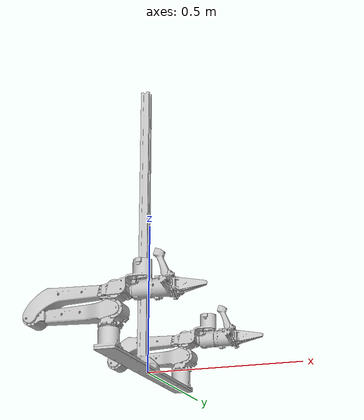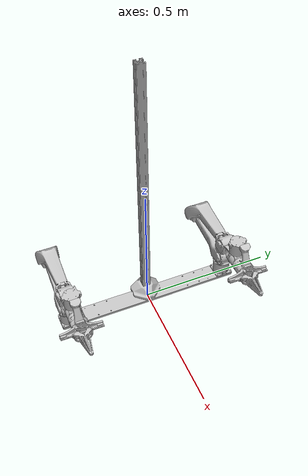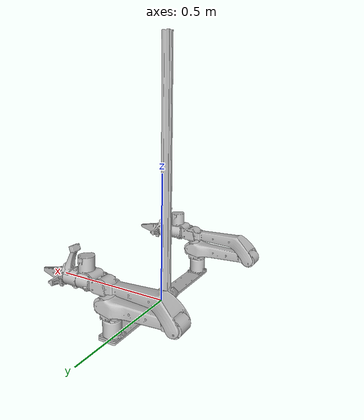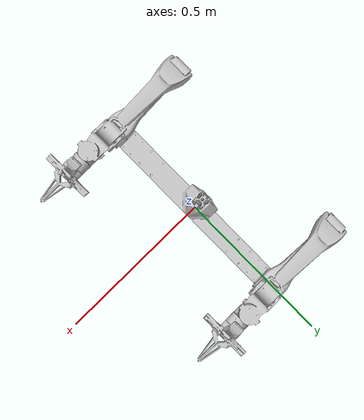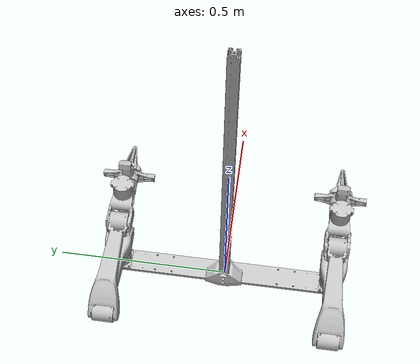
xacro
<?xml version="1.0" encoding="utf-8"?>
<robot xmlns:xacro="http://www.ros.org/wiki/xacro" name="stationlite">

    <xacro:arg name="use_ros2_control" default="false" />
    <xacro:arg name="use_world" default="true" />
    <xacro:arg name="use_gazebo" default="false" />
    <xacro:arg name="headless" default="true" />

    <xacro:include filename="$(find unistackbot_description)/arms/stationlite/urdf/stationlite_macro.xacro"/>
    <xacro:include filename="$(find unistackbot_description)/arms/stationlite/urdf/stationlite_ros2_control.xacro"/>

    <xacro:if value="$(arg use_world)">
        <link name="world"/>
        <joint name="stationlite_world" type="fixed">
            <parent link="world"/>
            <child link="base"/>
            <origin xyz="0 0 0" rpy="0 0 0"/>
        </joint>
    </xacro:if>

    <xacro:stationlite_dual_arm/>

    <xacro:if value="$(arg use_ros2_control)">
        <xacro:stationlite_ros2_control use_gazebo="$(arg use_gazebo)" headless="$(arg headless)"/>
    </xacro:if>

</robot>

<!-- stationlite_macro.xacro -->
<robot xmlns:xacro="http://www.ros.org/wiki/xacro">

  <material name="station_gray">
    <color rgba="0.75294 0.75294 0.75294 1"/>
  </material>

  <!-- stationlite 双臂 macro: base + 左右对称 6-DOF + 平移夹爪 -->
  <!-- 资产来源: Lumos Station Lite 原始 URDF (arms/stationlite/original/) -->

  <xacro:macro name="stationlite_dual_arm">
    <link name="base">
      <inertial>
        <origin xyz="-0.008088 -0.000003 0.217476" rpy="0 0 0"/>
        <mass value="2.239"/>
        <inertia ixx="0.265323119" ixy="-0.000000063" ixz="0.004959622" iyy="0.217350657" iyz="-0.000001195" izz="0.049509934"/>
      </inertial>
      <visual>
        <origin xyz="0 0 0" rpy="0 0 0"/>
        <geometry><mesh filename="package://unistackbot_description/arms/stationlite/meshes/visual/base.STL"/></geometry>
        <material name="station_gray"/>
      </visual>
    </link>

    <link name="left_armbase">
      <inertial>
        <origin xyz="-0.000021 -0.000047 0.037955" rpy="0 0 0"/>
        <mass value="0.510232"/>
        <inertia ixx="0.000284" ixy="0" ixz="0" iyy="0.000280" iyz="-0.000001" izz="0.000280"/>
      </inertial>
      <visual>
        <origin xyz="0 0 0" rpy="0 0 0"/>
        <geometry><mesh filename="package://unistackbot_description/arms/stationlite/meshes/visual/armbase.STL"/></geometry>
        <material name="station_gray"/>
      </visual>
    </link>

    <link name="left_link1">
      <inertial>
        <origin xyz="0.02 -0.002 0.109" rpy="0 0 0"/>
        <mass value="0.496"/>
        <inertia ixx="0.000349" ixy="0" ixz="0" iyy="0.000356" iyz="0" izz="0.000267"/>
      </inertial>
      <visual>
        <origin xyz="0 0 0" rpy="0 0 0"/>
        <geometry><mesh filename="package://unistackbot_description/arms/stationlite/meshes/visual/link1.STL"/></geometry>
        <material name="station_gray"/>
      </visual>
    </link>

    <link name="left_link2">
      <inertial>
        <origin xyz="-0.19164 -0.001145 -5.7E-05" rpy="0 0 0"/>
        <mass value="0.774"/>
        <inertia ixx="0.00037" ixy="0" ixz="0" iyy="0.006613" iyz="0" izz="0.006701"/>
      </inertial>
      <visual>
        <origin xyz="0 0 0" rpy="0 0 0"/>
        <geometry><mesh filename="package://unistackbot_description/arms/stationlite/meshes/visual/link2.STL"/></geometry>
        <material name="station_gray"/>
      </visual>
    </link>

    <link name="left_link3">
      <inertial>
        <origin xyz="0.17632 -0.001549 0.054649" rpy="0 0 0"/>
        <mass value="0.67366"/>
        <inertia ixx="0.000494" ixy="0" ixz="0.000806" iyy="0.007196" iyz="0" izz="0.00709"/>
      </inertial>
      <visual>
        <origin xyz="0 0 0" rpy="0 0 0"/>
        <geometry><mesh filename="package://unistackbot_description/arms/stationlite/meshes/visual/link3.STL"/></geometry>
        <material name="station_gray"/>
      </visual>
    </link>

    <link name="left_link4">
      <inertial>
        <origin xyz="0.064717 0 0.047271" rpy="0 0 0"/>
        <mass value="0.45575"/>
        <inertia ixx="0.000449" ixy="0" ixz="0.000246" iyy="0.000662" iyz="0" izz="0.000513"/>
      </inertial>
      <visual>
        <origin xyz="0 0 0" rpy="0 0 0"/>
        <geometry><mesh filename="package://unistackbot_description/arms/stationlite/meshes/visual/link4.STL"/></geometry>
        <material name="station_gray"/>
      </visual>
    </link>

    <link name="left_link5">
      <inertial>
        <origin xyz="0.002443 0 0.002098" rpy="0 0 0"/>
        <mass value="0.37166"/>
        <inertia ixx="0.000176" ixy="-5.299E-11" ixz="4E-06" iyy="0.00017" iyz="-5.3273E-08" izz="0.000147"/>
      </inertial>
      <visual>
        <origin xyz="0 0 0" rpy="0 0 0"/>
        <geometry><mesh filename="package://unistackbot_description/arms/stationlite/meshes/visual/link5.STL"/></geometry>
        <material name="station_gray"/>
      </visual>
    </link>

    <link name="left_linkgripper">
      <inertial>
        <origin xyz="0.043232 0.000041 0.000635" rpy="0 0 0"/>
        <mass value="0.484919"/>
        <inertia ixx="0.000344" ixy="0" ixz="0" iyy="0.000318" iyz="0" izz="0.000433"/>
      </inertial>
      <visual>
        <origin xyz="0 0 0" rpy="0 0 0"/>
        <geometry><mesh filename="package://unistackbot_description/arms/stationlite/meshes/visual/gripper_base.STL"/></geometry>
        <material name="station_gray"/>
      </visual>
    </link>

    <link name="left_griperlj_link1">
      <inertial>
        <origin xyz="-0.074793 -0.014951 0.000038" rpy="0 0 0"/>
        <mass value="0.049996"/>
        <inertia ixx="0.000008474" ixy="-0.000008882" ixz="0.000000032" iyy="0.000034639" iyz="0.000000009" izz="0.000035808"/>
      </inertial>
      <visual>
        <origin xyz="0 0 0" rpy="0 0 0"/>
        <geometry><mesh filename="package://unistackbot_description/arms/stationlite/meshes/visual/griperlj_link1.STL"/></geometry>
        <material name="station_gray"/>
      </visual>
    </link>

    <link name="left_griperlj_link2">
      <inertial>
        <origin xyz="-0.074793 0.014951 -0.000038" rpy="0 0 0"/>
        <mass value="0.050"/>
        <inertia ixx="0.000008474" ixy="0.000008882" ixz="-0.000000032" iyy="0.000034639" iyz="0.000000009" izz="0.000035808"/>
      </inertial>
      <visual>
        <origin xyz="0 0 0" rpy="0 0 0"/>
        <geometry><mesh filename="package://unistackbot_description/arms/stationlite/meshes/visual/griperlj_link2.STL"/></geometry>
        <material name="station_gray"/>
      </visual>
    </link>

    <link name="left_handcam">
      <inertial>
        <origin xyz="0.010406 -0.000111 -0.027564" rpy="0 0 0"/>
        <mass value="0.046"/>
        <inertia ixx="0.000038227" ixy="-0.000000112" ixz="0.000019170" iyy="0.000047999" iyz="0.000000136" izz="0.000021864"/>
      </inertial>
      <visual>
        <origin xyz="0 0 0" rpy="0 0 0"/>
        <geometry><mesh filename="package://unistackbot_description/arms/stationlite/meshes/visual/handcam.STL"/></geometry>
        <material name="station_gray"/>
      </visual>
    </link>

    <joint name="left_arm_mount_joint" type="fixed">
      <parent link="base"/>
      <child link="left_armbase"/>
      <origin xyz="0 0.3175 0" rpy="0 0 0"/>
    </joint>

    <joint name="left_joint1" type="revolute">
      <parent link="left_armbase"/>
      <child link="left_link1"/>
      <origin xyz="0 0 0" rpy="0 0 0"/>
      <axis xyz="0 0 1"/>
      <limit lower="-2.824" upper="2.824" effort="27" velocity="5.5"/>
    </joint>

    <joint name="left_joint2" type="revolute">
      <parent link="left_link1"/>
      <child link="left_link2"/>
      <origin xyz="0.024 0 0.117" rpy="0 0 0"/>
      <axis xyz="0 1 0"/>
      <limit lower="-0.209" upper="3.508" effort="27" velocity="5.5"/>
    </joint>

    <joint name="left_joint3" type="revolute">
      <parent link="left_link2"/>
      <child link="left_link3"/>
      <origin xyz="-0.265 0 0" rpy="0 0 0"/>
      <axis xyz="0 1 0"/>
      <limit lower="-3.193" upper="0" effort="27" velocity="5.5"/>
    </joint>

    <joint name="left_joint4" type="revolute">
      <parent link="left_link3"/>
      <child link="left_link4"/>
      <origin xyz="0.265 0 0.062" rpy="0 0 0"/>
      <axis xyz="0 1 0"/>
      <limit lower="-1.710" upper="1.710" effort="7" velocity="20.9"/>
    </joint>

    <joint name="left_joint5" type="revolute">
      <parent link="left_link4"/>
      <child link="left_link5"/>
      <origin xyz="0.078 0 -0.00295" rpy="0 0 0"/>
      <axis xyz="0 0 1"/>
      <limit lower="-1.710" upper="1.710" effort="12.5" velocity="20.9"/>
    </joint>

    <joint name="left_joint6" type="revolute">
      <parent link="left_link5"/>
      <child link="left_linkgripper"/>
      <origin xyz="0.0255 0 0" rpy="0 0 0"/>
      <axis xyz="1 0 0"/>
      <limit lower="-2.856" upper="2.856" effort="12.5" velocity="20.9"/>
    </joint>

    <joint name="left_gripper_joint1" type="prismatic">
      <parent link="left_linkgripper"/>
      <child link="left_griperlj_link1"/>
      <origin xyz="0.1733 0 0" rpy="0 0 0"/>
      <axis xyz="0 1 0"/>
      <limit lower="-0.0425" upper="0" effort="150" velocity="0.8"/>
    </joint>

    <joint name="left_gripper_joint2" type="prismatic">
      <parent link="left_linkgripper"/>
      <child link="left_griperlj_link2"/>
      <origin xyz="0.1733 0 0" rpy="0 0 0"/>
      <axis xyz="0 1 0"/>
      <limit lower="0" upper="0.0425" effort="150" velocity="0.8"/>
    </joint>

    <joint name="left_handcam_joint" type="fixed">
      <parent link="left_linkgripper"/>
      <child link="left_handcam"/>
      <origin xyz="0.037112 0 0.100137" rpy="0 0.349065850399 0"/>
    </joint>

    <!-- 右臂: 从原始 URDF 复制 (y 轴镜像对称) -->
    <link name="right_armbase">
      <inertial>
        <origin xyz="-0.000021 -0.000047 0.037955" rpy="0 0 0"/>
        <mass value="0.510232"/>
        <inertia ixx="0.000284" ixy="0" ixz="0" iyy="0.000280" iyz="-0.000001" izz="0.000280"/>
      </inertial>
      <visual>
        <origin xyz="0 0 0" rpy="0 0 0"/>
        <geometry><mesh filename="package://unistackbot_description/arms/stationlite/meshes/visual/armbase.STL"/></geometry>
        <material name="station_gray"/>
      </visual>
    </link>

    <link name="right_link1">
      <inertial>
        <origin xyz="0.02 -0.002 0.109" rpy="0 0 0"/>
        <mass value="0.496"/>
        <inertia ixx="0.000349" ixy="0" ixz="0" iyy="0.000356" iyz="0" izz="0.000267"/>
      </inertial>
      <visual>
        <origin xyz="0 0 0" rpy="0 0 0"/>
        <geometry><mesh filename="package://unistackbot_description/arms/stationlite/meshes/visual/link1.STL"/></geometry>
        <material name="station_gray"/>
      </visual>
    </link>

    <link name="right_link2">
      <inertial>
        <origin xyz="-0.19164 -0.001145 -5.7E-05" rpy="0 0 0"/>
        <mass value="0.774"/>
        <inertia ixx="0.00037" ixy="0" ixz="0" iyy="0.006613" iyz="0" izz="0.006701"/>
      </inertial>
      <visual>
        <origin xyz="0 0 0" rpy="0 0 0"/>
        <geometry><mesh filename="package://unistackbot_description/arms/stationlite/meshes/visual/link2.STL"/></geometry>
        <material name="station_gray"/>
      </visual>
    </link>

    <link name="right_link3">
      <inertial>
        <origin xyz="0.17632 -0.001549 0.054649" rpy="0 0 0"/>
        <mass value="0.67366"/>
        <inertia ixx="0.000494" ixy="0" ixz="0.000806" iyy="0.007196" iyz="0" izz="0.00709"/>
      </inertial>
      <visual>
        <origin xyz="0 0 0" rpy="0 0 0"/>
        <geometry><mesh filename="package://unistackbot_description/arms/stationlite/meshes/visual/link3.STL"/></geometry>
        <material name="station_gray"/>
      </visual>
    </link>

    <link name="right_link4">
      <inertial>
        <origin xyz="0.064717 0 0.047271" rpy="0 0 0"/>
        <mass value="0.45575"/>
        <inertia ixx="0.000449" ixy="0" ixz="0.000246" iyy="0.000662" iyz="0" izz="0.000513"/>
      </inertial>
      <visual>
        <origin xyz="0 0 0" rpy="0 0 0"/>
        <geometry><mesh filename="package://unistackbot_description/arms/stationlite/meshes/visual/link4.STL"/></geometry>
        <material name="station_gray"/>
      </visual>
    </link>

    <link name="right_link5">
      <inertial>
        <origin xyz="0.002443 0 0.002098" rpy="0 0 0"/>
        <mass value="0.37166"/>
        <inertia ixx="0.000176" ixy="-5.299E-11" ixz="4E-06" iyy="0.00017" iyz="-5.3273E-08" izz="0.000147"/>
      </inertial>
      <visual>
        <origin xyz="0 0 0" rpy="0 0 0"/>
        <geometry><mesh filename="package://unistackbot_description/arms/stationlite/meshes/visual/link5.STL"/></geometry>
        <material name="station_gray"/>
      </visual>
    </link>

    <link name="right_linkgripper">
      <inertial>
        <origin xyz="0.043232 0.000041 0.000635" rpy="0 0 0"/>
        <mass value="0.484919"/>
        <inertia ixx="0.000344" ixy="0" ixz="0" iyy="0.000318" iyz="0" izz="0.000433"/>
      </inertial>
      <visual>
        <origin xyz="0 0 0" rpy="0 0 0"/>
        <geometry><mesh filename="package://unistackbot_description/arms/stationlite/meshes/visual/gripper_base.STL"/></geometry>
        <material name="station_gray"/>
      </visual>
    </link>

    <link name="right_griperlj_link1">
      <inertial>
        <origin xyz="-0.074793 -0.014951 0.000038" rpy="0 0 0"/>
        <mass value="0.049996"/>
        <inertia ixx="0.000008474" ixy="-0.000008882" ixz="0.000000032" iyy="0.000034639" iyz="0.000000009" izz="0.000035808"/>
      </inertial>
      <visual>
        <origin xyz="0 0 0" rpy="0 0 0"/>
        <geometry><mesh filename="package://unistackbot_description/arms/stationlite/meshes/visual/griperlj_link1.STL"/></geometry>
        <material name="station_gray"/>
      </visual>
    </link>

    <link name="right_griperlj_link2">
      <inertial>
        <origin xyz="-0.074793 0.014951 -0.000038" rpy="0 0 0"/>
        <mass value="0.050"/>
        <inertia ixx="0.000008474" ixy="0.000008882" ixz="-0.000000032" iyy="0.000034639" iyz="0.000000009" izz="0.000035808"/>
      </inertial>
      <visual>
        <origin xyz="0 0 0" rpy="0 0 0"/>
        <geometry><mesh filename="package://unistackbot_description/arms/stationlite/meshes/visual/griperlj_link2.STL"/></geometry>
        <material name="station_gray"/>
      </visual>
    </link>

    <link name="right_handcam">
      <inertial>
        <origin xyz="0.010406 -0.000111 -0.027564" rpy="0 0 0"/>
        <mass value="0.046"/>
        <inertia ixx="0.000038227" ixy="-0.000000112" ixz="0.000019170" iyy="0.000047999" iyz="0.000000136" izz="0.000021864"/>
      </inertial>
      <visual>
        <origin xyz="0 0 0" rpy="0 0 0"/>
        <geometry><mesh filename="package://unistackbot_description/arms/stationlite/meshes/visual/handcam.STL"/></geometry>
        <material name="station_gray"/>
      </visual>
    </link>

    <joint name="right_arm_mount_joint" type="fixed">
      <parent link="base"/>
      <child link="right_armbase"/>
      <origin xyz="0 -0.3175 0" rpy="0 0 0"/>
    </joint>

    <joint name="right_joint1" type="revolute">
      <parent link="right_armbase"/>
      <child link="right_link1"/>
      <origin xyz="0 0 0" rpy="0 0 0"/>
      <axis xyz="0 0 1"/>
      <limit lower="-2.824" upper="2.824" effort="27" velocity="5.5"/>
    </joint>

    <joint name="right_joint2" type="revolute">
      <parent link="right_link1"/>
      <child link="right_link2"/>
      <origin xyz="0.024 0 0.117" rpy="0 0 0"/>
      <axis xyz="0 1 0"/>
      <limit lower="-0.209" upper="3.508" effort="27" velocity="5.5"/>
    </joint>

    <joint name="right_joint3" type="revolute">
      <parent link="right_link2"/>
      <child link="right_link3"/>
      <origin xyz="-0.265 0 0" rpy="0 0 0"/>
      <axis xyz="0 1 0"/>
      <limit lower="-3.193" upper="0" effort="27" velocity="5.5"/>
    </joint>

    <joint name="right_joint4" type="revolute">
      <parent link="right_link3"/>
      <child link="right_link4"/>
      <origin xyz="0.265 0 0.062" rpy="0 0 0"/>
      <axis xyz="0 1 0"/>
      <limit lower="-1.710" upper="1.710" effort="7" velocity="20.9"/>
    </joint>

    <joint name="right_joint5" type="revolute">
      <parent link="right_link4"/>
      <child link="right_link5"/>
      <origin xyz="0.078 0 -0.00295" rpy="0 0 0"/>
      <axis xyz="0 0 1"/>
      <limit lower="-1.710" upper="1.710" effort="12.5" velocity="20.9"/>
    </joint>

    <joint name="right_joint6" type="revolute">
      <parent link="right_link5"/>
      <child link="right_linkgripper"/>
      <origin xyz="0.0255 0 0" rpy="0 0 0"/>
      <axis xyz="1 0 0"/>
      <limit lower="-2.856" upper="2.856" effort="12.5" velocity="20.9"/>
    </joint>

    <joint name="right_gripper_joint1" type="prismatic">
      <parent link="right_linkgripper"/>
      <child link="right_griperlj_link1"/>
      <origin xyz="0.1733 0 0" rpy="0 0 0"/>
      <axis xyz="0 1 0"/>
      <limit lower="-0.0425" upper="0" effort="150" velocity="0.8"/>
    </joint>

    <joint name="right_gripper_joint2" type="prismatic">
      <parent link="right_linkgripper"/>
      <child link="right_griperlj_link2"/>
      <origin xyz="0.1733 0 0" rpy="0 0 0"/>
      <axis xyz="0 1 0"/>
      <limit lower="0" upper="0.0425" effort="150" velocity="0.8"/>
    </joint>

    <joint name="right_handcam_joint" type="fixed">
      <parent link="right_linkgripper"/>
      <child link="right_handcam"/>
      <origin xyz="0.037112 0 0.100137" rpy="0 0.349065850399 0"/>
    </joint>

  </xacro:macro>

</robot>
